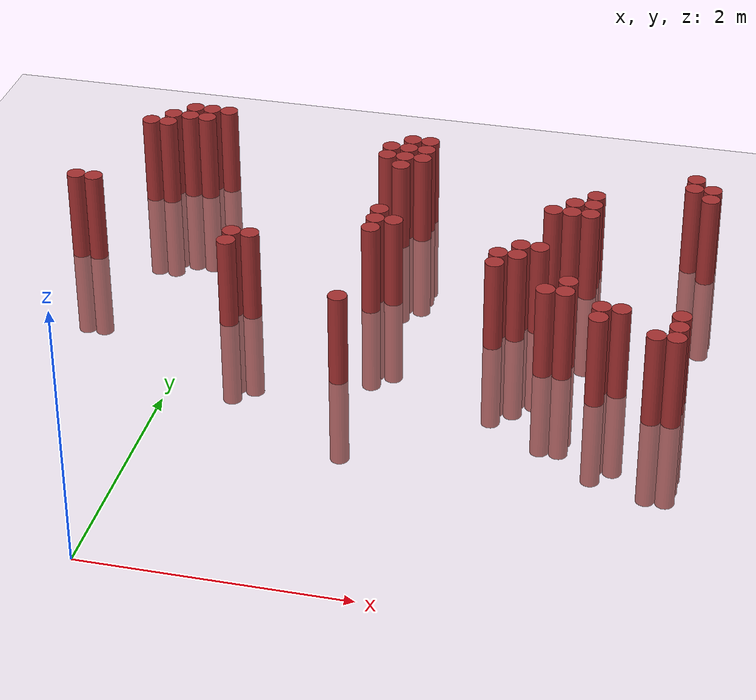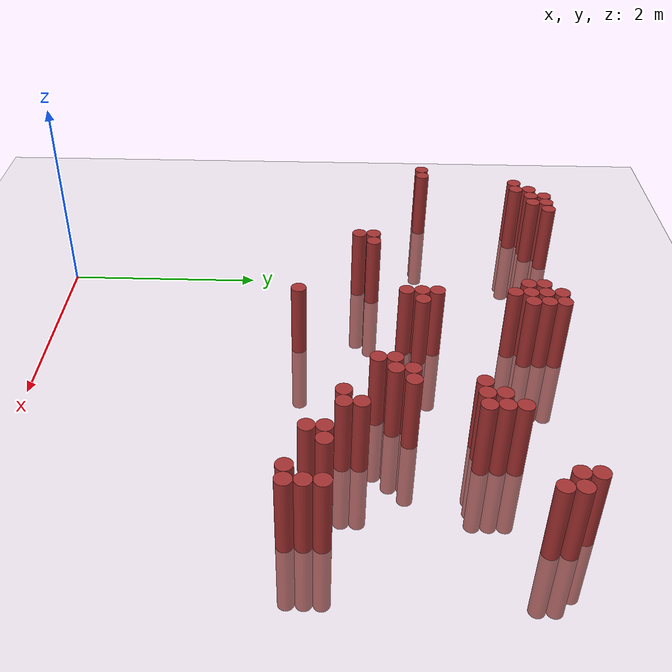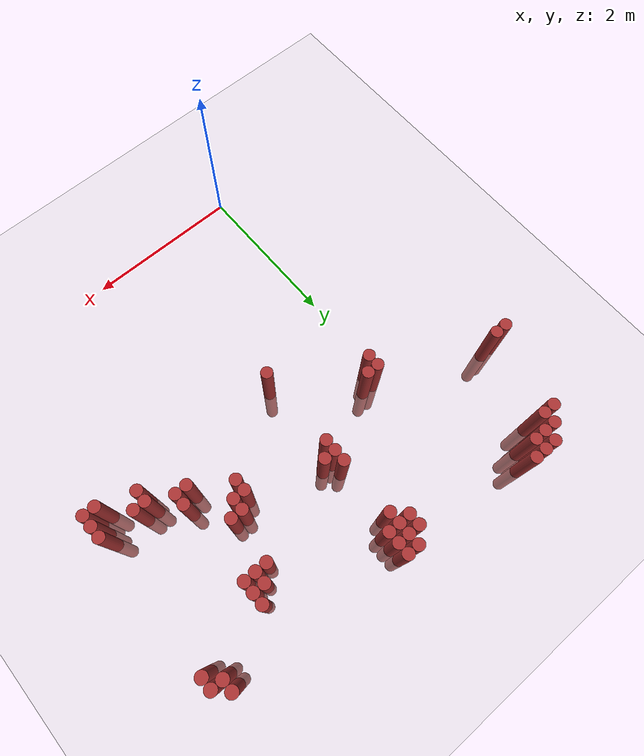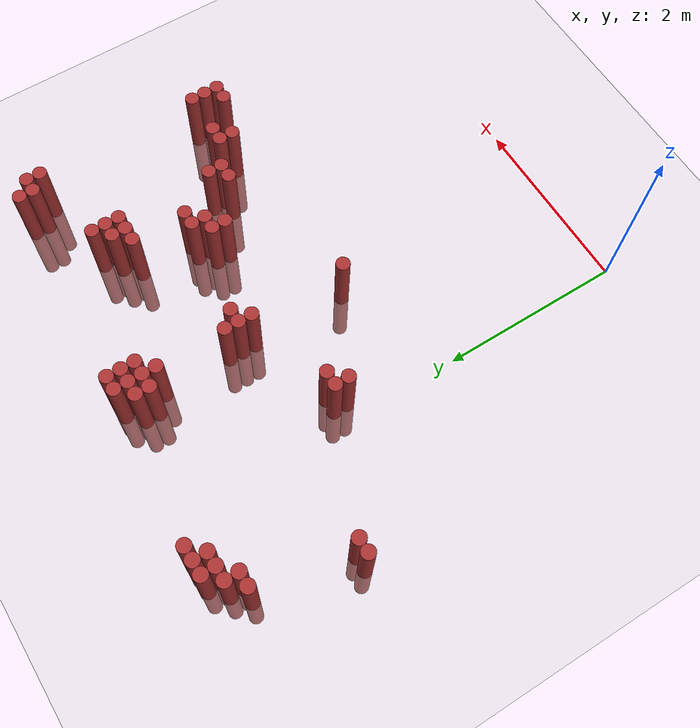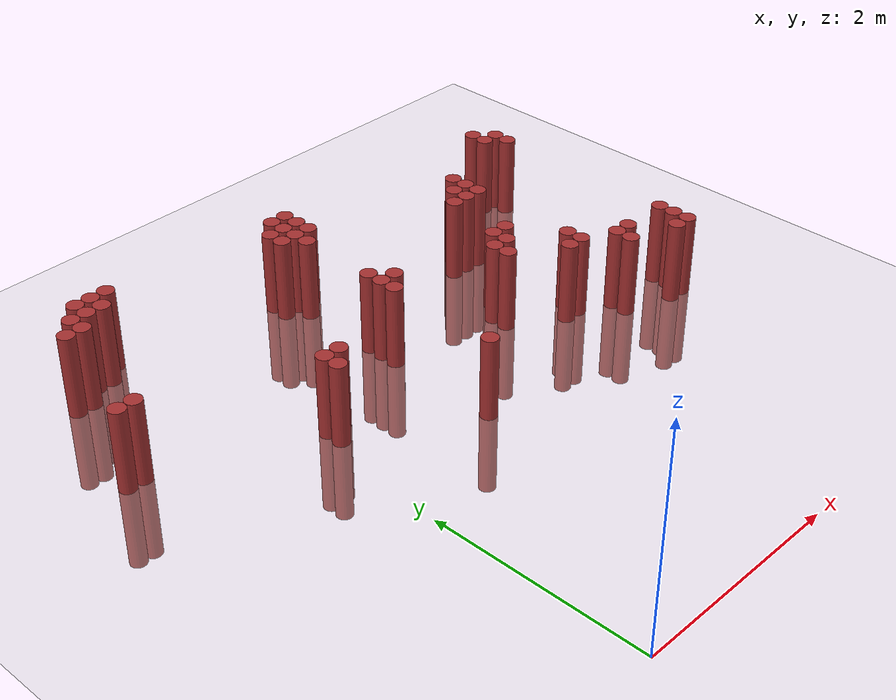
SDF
<sdf version="1.6">
 <world name="default">
  <model name="ground_plane">
   <static>1</static>
   <link name="link">
    <collision name="collision">
     <geometry><plane><normal>0 0 1</normal><size>100 100</size></plane></geometry>
     <surface><friction><ode><mu>100</mu><mu2>50</mu2></ode></friction></surface>
    </collision>
    <visual name="visual">
     <cast_shadows>0</cast_shadows>
     <geometry><plane><normal>0 0 1</normal><size>100 100</size></plane></geometry>
     <material>
      <script><uri>file://media/materials/scripts/gazebo.material</uri><name>Gazebo/Grey</name></script>
     </material>
    </visual>
   </link>
  </model>
  <model name="unit_cylinder_342">
   <static>1</static>
   <pose>-1.325000 3.925000 0.000000 0.000000 0.000000 0.000000</pose>
   <link name="link">
    <inertial>
     <mass>1</mass>
     <inertia><ixx>0.145833</ixx><ixy>0</ixy><ixz>0</ixz><iyy>0.145833</iyy><iyz>0</iyz><izz>0.125</izz></inertia>
    </inertial>
    <collision name="collision">
     <geometry><cylinder><radius>0.075000</radius><length>1.5</length></cylinder></geometry>
    </collision>
    <visual name="visual">
     <geometry><cylinder><radius>0.075000</radius><length>1.5</length></cylinder></geometry>
     <material>
      <ambient>0.648000 0.192000 0.192000 1</ambient>
      <diffuse>0.648000 0.192000 0.192000 1</diffuse>
     </material>
     <material>
      <script><name>Gazebo/Grey</name><uri>file://media/materials/scripts/gazebo.material</uri></script>
     </material>
    </visual>
   </link>
  </model>
  <model name="unit_cylinder_345">
   <static>1</static>
   <pose>-1.175000 3.925000 0.000000 0.000000 0.000000 0.000000</pose>
   <link name="link">
    <inertial>
     <mass>1</mass>
     <inertia><ixx>0.145833</ixx><ixy>0</ixy><ixz>0</ixz><iyy>0.145833</iyy><iyz>0</iyz><izz>0.125</izz></inertia>
    </inertial>
    <collision name="collision">
     <geometry><cylinder><radius>0.075000</radius><length>1.5</length></cylinder></geometry>
    </collision>
    <visual name="visual">
     <geometry><cylinder><radius>0.075000</radius><length>1.5</length></cylinder></geometry>
     <material>
      <ambient>0.648000 0.192000 0.192000 1</ambient>
      <diffuse>0.648000 0.192000 0.192000 1</diffuse>
     </material>
     <material>
      <script><name>Gazebo/Grey</name><uri>file://media/materials/scripts/gazebo.material</uri></script>
     </material>
    </visual>
   </link>
  </model>
  <model name="unit_cylinder_346">
   <static>1</static>
   <pose>-1.025000 4.975000 0.000000 0.000000 0.000000 0.000000</pose>
   <link name="link">
    <inertial>
     <mass>1</mass>
     <inertia><ixx>0.145833</ixx><ixy>0</ixy><ixz>0</ixz><iyy>0.145833</iyy><iyz>0</iyz><izz>0.125</izz></inertia>
    </inertial>
    <collision name="collision">
     <geometry><cylinder><radius>0.075000</radius><length>1.5</length></cylinder></geometry>
    </collision>
    <visual name="visual">
     <geometry><cylinder><radius>0.075000</radius><length>1.5</length></cylinder></geometry>
     <material>
      <ambient>0.648000 0.192000 0.192000 1</ambient>
      <diffuse>0.648000 0.192000 0.192000 1</diffuse>
     </material>
     <material>
      <script><name>Gazebo/Grey</name><uri>file://media/materials/scripts/gazebo.material</uri></script>
     </material>
    </visual>
   </link>
  </model>
  <model name="unit_cylinder_347">
   <static>1</static>
   <pose>-0.875000 4.975000 0.000000 0.000000 0.000000 0.000000</pose>
   <link name="link">
    <inertial>
     <mass>1</mass>
     <inertia><ixx>0.145833</ixx><ixy>0</ixy><ixz>0</ixz><iyy>0.145833</iyy><iyz>0</iyz><izz>0.125</izz></inertia>
    </inertial>
    <collision name="collision">
     <geometry><cylinder><radius>0.075000</radius><length>1.5</length></cylinder></geometry>
    </collision>
    <visual name="visual">
     <geometry><cylinder><radius>0.075000</radius><length>1.5</length></cylinder></geometry>
     <material>
      <ambient>0.648000 0.192000 0.192000 1</ambient>
      <diffuse>0.648000 0.192000 0.192000 1</diffuse>
     </material>
     <material>
      <script><name>Gazebo/Grey</name><uri>file://media/materials/scripts/gazebo.material</uri></script>
     </material>
    </visual>
   </link>
  </model>
  <model name="unit_cylinder_348">
   <static>1</static>
   <pose>-0.875000 5.125000 0.000000 0.000000 0.000000 0.000000</pose>
   <link name="link">
    <inertial>
     <mass>1</mass>
     <inertia><ixx>0.145833</ixx><ixy>0</ixy><ixz>0</ixz><iyy>0.145833</iyy><iyz>0</iyz><izz>0.125</izz></inertia>
    </inertial>
    <collision name="collision">
     <geometry><cylinder><radius>0.075000</radius><length>1.5</length></cylinder></geometry>
    </collision>
    <visual name="visual">
     <geometry><cylinder><radius>0.075000</radius><length>1.5</length></cylinder></geometry>
     <material>
      <ambient>0.648000 0.192000 0.192000 1</ambient>
      <diffuse>0.648000 0.192000 0.192000 1</diffuse>
     </material>
     <material>
      <script><name>Gazebo/Grey</name><uri>file://media/materials/scripts/gazebo.material</uri></script>
     </material>
    </visual>
   </link>
  </model>
  <model name="unit_cylinder_351">
   <static>1</static>
   <pose>-0.725000 5.125000 0.000000 0.000000 0.000000 0.000000</pose>
   <link name="link">
    <inertial>
     <mass>1</mass>
     <inertia><ixx>0.145833</ixx><ixy>0</ixy><ixz>0</ixz><iyy>0.145833</iyy><iyz>0</iyz><izz>0.125</izz></inertia>
    </inertial>
    <collision name="collision">
     <geometry><cylinder><radius>0.075000</radius><length>1.5</length></cylinder></geometry>
    </collision>
    <visual name="visual">
     <geometry><cylinder><radius>0.075000</radius><length>1.5</length></cylinder></geometry>
     <material>
      <ambient>0.648000 0.192000 0.192000 1</ambient>
      <diffuse>0.648000 0.192000 0.192000 1</diffuse>
     </material>
     <material>
      <script><name>Gazebo/Grey</name><uri>file://media/materials/scripts/gazebo.material</uri></script>
     </material>
    </visual>
   </link>
  </model>
  <model name="unit_cylinder_352">
   <static>1</static>
   <pose>-0.725000 5.275000 0.000000 0.000000 0.000000 0.000000</pose>
   <link name="link">
    <inertial>
     <mass>1</mass>
     <inertia><ixx>0.145833</ixx><ixy>0</ixy><ixz>0</ixz><iyy>0.145833</iyy><iyz>0</iyz><izz>0.125</izz></inertia>
    </inertial>
    <collision name="collision">
     <geometry><cylinder><radius>0.075000</radius><length>1.5</length></cylinder></geometry>
    </collision>
    <visual name="visual">
     <geometry><cylinder><radius>0.075000</radius><length>1.5</length></cylinder></geometry>
     <material>
      <ambient>0.648000 0.192000 0.192000 1</ambient>
      <diffuse>0.648000 0.192000 0.192000 1</diffuse>
     </material>
     <material>
      <script><name>Gazebo/Grey</name><uri>file://media/materials/scripts/gazebo.material</uri></script>
     </material>
    </visual>
   </link>
  </model>
  <model name="unit_cylinder_357">
   <static>1</static>
   <pose>-0.575000 5.125000 0.000000 0.000000 0.000000 0.000000</pose>
   <link name="link">
    <inertial>
     <mass>1</mass>
     <inertia><ixx>0.145833</ixx><ixy>0</ixy><ixz>0</ixz><iyy>0.145833</iyy><iyz>0</iyz><izz>0.125</izz></inertia>
    </inertial>
    <collision name="collision">
     <geometry><cylinder><radius>0.075000</radius><length>1.5</length></cylinder></geometry>
    </collision>
    <visual name="visual">
     <geometry><cylinder><radius>0.075000</radius><length>1.5</length></cylinder></geometry>
     <material>
      <ambient>0.648000 0.192000 0.192000 1</ambient>
      <diffuse>0.648000 0.192000 0.192000 1</diffuse>
     </material>
     <material>
      <script><name>Gazebo/Grey</name><uri>file://media/materials/scripts/gazebo.material</uri></script>
     </material>
    </visual>
   </link>
  </model>
  <model name="unit_cylinder_358">
   <static>1</static>
   <pose>-0.575000 5.275000 0.000000 0.000000 0.000000 0.000000</pose>
   <link name="link">
    <inertial>
     <mass>1</mass>
     <inertia><ixx>0.145833</ixx><ixy>0</ixy><ixz>0</ixz><iyy>0.145833</iyy><iyz>0</iyz><izz>0.125</izz></inertia>
    </inertial>
    <collision name="collision">
     <geometry><cylinder><radius>0.075000</radius><length>1.5</length></cylinder></geometry>
    </collision>
    <visual name="visual">
     <geometry><cylinder><radius>0.075000</radius><length>1.5</length></cylinder></geometry>
     <material>
      <ambient>0.648000 0.192000 0.192000 1</ambient>
      <diffuse>0.648000 0.192000 0.192000 1</diffuse>
     </material>
     <material>
      <script><name>Gazebo/Grey</name><uri>file://media/materials/scripts/gazebo.material</uri></script>
     </material>
    </visual>
   </link>
  </model>
  <model name="unit_cylinder_359">
   <static>1</static>
   <pose>-0.425000 5.275000 0.000000 0.000000 0.000000 0.000000</pose>
   <link name="link">
    <inertial>
     <mass>1</mass>
     <inertia><ixx>0.145833</ixx><ixy>0</ixy><ixz>0</ixz><iyy>0.145833</iyy><iyz>0</iyz><izz>0.125</izz></inertia>
    </inertial>
    <collision name="collision">
     <geometry><cylinder><radius>0.075000</radius><length>1.5</length></cylinder></geometry>
    </collision>
    <visual name="visual">
     <geometry><cylinder><radius>0.075000</radius><length>1.5</length></cylinder></geometry>
     <material>
      <ambient>0.648000 0.192000 0.192000 1</ambient>
      <diffuse>0.648000 0.192000 0.192000 1</diffuse>
     </material>
     <material>
      <script><name>Gazebo/Grey</name><uri>file://media/materials/scripts/gazebo.material</uri></script>
     </material>
    </visual>
   </link>
  </model>
  <model name="unit_cylinder_367">
   <static>1</static>
   <pose>0.175000 3.175000 0.000000 0.000000 0.000000 0.000000</pose>
   <link name="link">
    <inertial>
     <mass>1</mass>
     <inertia><ixx>0.145833</ixx><ixy>0</ixy><ixz>0</ixz><iyy>0.145833</iyy><iyz>0</iyz><izz>0.125</izz></inertia>
    </inertial>
    <collision name="collision">
     <geometry><cylinder><radius>0.075000</radius><length>1.5</length></cylinder></geometry>
    </collision>
    <visual name="visual">
     <geometry><cylinder><radius>0.075000</radius><length>1.5</length></cylinder></geometry>
     <material>
      <ambient>0.648000 0.192000 0.192000 1</ambient>
      <diffuse>0.648000 0.192000 0.192000 1</diffuse>
     </material>
     <material>
      <script><name>Gazebo/Grey</name><uri>file://media/materials/scripts/gazebo.material</uri></script>
     </material>
    </visual>
   </link>
  </model>
  <model name="unit_cylinder_368">
   <static>1</static>
   <pose>0.175000 3.325000 0.000000 0.000000 0.000000 0.000000</pose>
   <link name="link">
    <inertial>
     <mass>1</mass>
     <inertia><ixx>0.145833</ixx><ixy>0</ixy><ixz>0</ixz><iyy>0.145833</iyy><iyz>0</iyz><izz>0.125</izz></inertia>
    </inertial>
    <collision name="collision">
     <geometry><cylinder><radius>0.075000</radius><length>1.5</length></cylinder></geometry>
    </collision>
    <visual name="visual">
     <geometry><cylinder><radius>0.075000</radius><length>1.5</length></cylinder></geometry>
     <material>
      <ambient>0.648000 0.192000 0.192000 1</ambient>
      <diffuse>0.648000 0.192000 0.192000 1</diffuse>
     </material>
     <material>
      <script><name>Gazebo/Grey</name><uri>file://media/materials/scripts/gazebo.material</uri></script>
     </material>
    </visual>
   </link>
  </model>
  <model name="unit_cylinder_369">
   <static>1</static>
   <pose>0.325000 3.325000 0.000000 0.000000 0.000000 0.000000</pose>
   <link name="link">
    <inertial>
     <mass>1</mass>
     <inertia><ixx>0.145833</ixx><ixy>0</ixy><ixz>0</ixz><iyy>0.145833</iyy><iyz>0</iyz><izz>0.125</izz></inertia>
    </inertial>
    <collision name="collision">
     <geometry><cylinder><radius>0.075000</radius><length>1.5</length></cylinder></geometry>
    </collision>
    <visual name="visual">
     <geometry><cylinder><radius>0.075000</radius><length>1.5</length></cylinder></geometry>
     <material>
      <ambient>0.648000 0.192000 0.192000 1</ambient>
      <diffuse>0.648000 0.192000 0.192000 1</diffuse>
     </material>
     <material>
      <script><name>Gazebo/Grey</name><uri>file://media/materials/scripts/gazebo.material</uri></script>
     </material>
    </visual>
   </link>
  </model>
  <model name="unit_cylinder_378">
   <static>1</static>
   <pose>1.075000 4.825000 0.000000 0.000000 0.000000 0.000000</pose>
   <link name="link">
    <inertial>
     <mass>1</mass>
     <inertia><ixx>0.145833</ixx><ixy>0</ixy><ixz>0</ixz><iyy>0.145833</iyy><iyz>0</iyz><izz>0.125</izz></inertia>
    </inertial>
    <collision name="collision">
     <geometry><cylinder><radius>0.075000</radius><length>1.5</length></cylinder></geometry>
    </collision>
    <visual name="visual">
     <geometry><cylinder><radius>0.075000</radius><length>1.5</length></cylinder></geometry>
     <material>
      <ambient>0.648000 0.192000 0.192000 1</ambient>
      <diffuse>0.648000 0.192000 0.192000 1</diffuse>
     </material>
     <material>
      <script><name>Gazebo/Grey</name><uri>file://media/materials/scripts/gazebo.material</uri></script>
     </material>
    </visual>
   </link>
  </model>
  <model name="unit_cylinder_379">
   <static>1</static>
   <pose>1.075000 4.975000 0.000000 0.000000 0.000000 0.000000</pose>
   <link name="link">
    <inertial>
     <mass>1</mass>
     <inertia><ixx>0.145833</ixx><ixy>0</ixy><ixz>0</ixz><iyy>0.145833</iyy><iyz>0</iyz><izz>0.125</izz></inertia>
    </inertial>
    <collision name="collision">
     <geometry><cylinder><radius>0.075000</radius><length>1.5</length></cylinder></geometry>
    </collision>
    <visual name="visual">
     <geometry><cylinder><radius>0.075000</radius><length>1.5</length></cylinder></geometry>
     <material>
      <ambient>0.648000 0.192000 0.192000 1</ambient>
      <diffuse>0.648000 0.192000 0.192000 1</diffuse>
     </material>
     <material>
      <script><name>Gazebo/Grey</name><uri>file://media/materials/scripts/gazebo.material</uri></script>
     </material>
    </visual>
   </link>
  </model>
  <model name="unit_cylinder_381">
   <static>1</static>
   <pose>1.225000 2.575000 0.000000 0.000000 0.000000 0.000000</pose>
   <link name="link">
    <inertial>
     <mass>1</mass>
     <inertia><ixx>0.145833</ixx><ixy>0</ixy><ixz>0</ixz><iyy>0.145833</iyy><iyz>0</iyz><izz>0.125</izz></inertia>
    </inertial>
    <collision name="collision">
     <geometry><cylinder><radius>0.075000</radius><length>1.5</length></cylinder></geometry>
    </collision>
    <visual name="visual">
     <geometry><cylinder><radius>0.075000</radius><length>1.5</length></cylinder></geometry>
     <material>
      <ambient>0.648000 0.192000 0.192000 1</ambient>
      <diffuse>0.648000 0.192000 0.192000 1</diffuse>
     </material>
     <material>
      <script><name>Gazebo/Grey</name><uri>file://media/materials/scripts/gazebo.material</uri></script>
     </material>
    </visual>
   </link>
  </model>
  <model name="unit_cylinder_382">
   <static>1</static>
   <pose>1.225000 3.625000 0.000000 0.000000 0.000000 0.000000</pose>
   <link name="link">
    <inertial>
     <mass>1</mass>
     <inertia><ixx>0.145833</ixx><ixy>0</ixy><ixz>0</ixz><iyy>0.145833</iyy><iyz>0</iyz><izz>0.125</izz></inertia>
    </inertial>
    <collision name="collision">
     <geometry><cylinder><radius>0.075000</radius><length>1.5</length></cylinder></geometry>
    </collision>
    <visual name="visual">
     <geometry><cylinder><radius>0.075000</radius><length>1.5</length></cylinder></geometry>
     <material>
      <ambient>0.648000 0.192000 0.192000 1</ambient>
      <diffuse>0.648000 0.192000 0.192000 1</diffuse>
     </material>
     <material>
      <script><name>Gazebo/Grey</name><uri>file://media/materials/scripts/gazebo.material</uri></script>
     </material>
    </visual>
   </link>
  </model>
  <model name="unit_cylinder_383">
   <static>1</static>
   <pose>1.225000 3.775000 0.000000 0.000000 0.000000 0.000000</pose>
   <link name="link">
    <inertial>
     <mass>1</mass>
     <inertia><ixx>0.145833</ixx><ixy>0</ixy><ixz>0</ixz><iyy>0.145833</iyy><iyz>0</iyz><izz>0.125</izz></inertia>
    </inertial>
    <collision name="collision">
     <geometry><cylinder><radius>0.075000</radius><length>1.5</length></cylinder></geometry>
    </collision>
    <visual name="visual">
     <geometry><cylinder><radius>0.075000</radius><length>1.5</length></cylinder></geometry>
     <material>
      <ambient>0.648000 0.192000 0.192000 1</ambient>
      <diffuse>0.648000 0.192000 0.192000 1</diffuse>
     </material>
     <material>
      <script><name>Gazebo/Grey</name><uri>file://media/materials/scripts/gazebo.material</uri></script>
     </material>
    </visual>
   </link>
  </model>
  <model name="unit_cylinder_384">
   <static>1</static>
   <pose>1.225000 3.925000 0.000000 0.000000 0.000000 0.000000</pose>
   <link name="link">
    <inertial>
     <mass>1</mass>
     <inertia><ixx>0.145833</ixx><ixy>0</ixy><ixz>0</ixz><iyy>0.145833</iyy><iyz>0</iyz><izz>0.125</izz></inertia>
    </inertial>
    <collision name="collision">
     <geometry><cylinder><radius>0.075000</radius><length>1.5</length></cylinder></geometry>
    </collision>
    <visual name="visual">
     <geometry><cylinder><radius>0.075000</radius><length>1.5</length></cylinder></geometry>
     <material>
      <ambient>0.648000 0.192000 0.192000 1</ambient>
      <diffuse>0.648000 0.192000 0.192000 1</diffuse>
     </material>
     <material>
      <script><name>Gazebo/Grey</name><uri>file://media/materials/scripts/gazebo.material</uri></script>
     </material>
    </visual>
   </link>
  </model>
  <model name="unit_cylinder_385">
   <static>1</static>
   <pose>1.225000 4.675000 0.000000 0.000000 0.000000 0.000000</pose>
   <link name="link">
    <inertial>
     <mass>1</mass>
     <inertia><ixx>0.145833</ixx><ixy>0</ixy><ixz>0</ixz><iyy>0.145833</iyy><iyz>0</iyz><izz>0.125</izz></inertia>
    </inertial>
    <collision name="collision">
     <geometry><cylinder><radius>0.075000</radius><length>1.5</length></cylinder></geometry>
    </collision>
    <visual name="visual">
     <geometry><cylinder><radius>0.075000</radius><length>1.5</length></cylinder></geometry>
     <material>
      <ambient>0.648000 0.192000 0.192000 1</ambient>
      <diffuse>0.648000 0.192000 0.192000 1</diffuse>
     </material>
     <material>
      <script><name>Gazebo/Grey</name><uri>file://media/materials/scripts/gazebo.material</uri></script>
     </material>
    </visual>
   </link>
  </model>
  <model name="unit_cylinder_386">
   <static>1</static>
   <pose>1.225000 4.825000 0.000000 0.000000 0.000000 0.000000</pose>
   <link name="link">
    <inertial>
     <mass>1</mass>
     <inertia><ixx>0.145833</ixx><ixy>0</ixy><ixz>0</ixz><iyy>0.145833</iyy><iyz>0</iyz><izz>0.125</izz></inertia>
    </inertial>
    <collision name="collision">
     <geometry><cylinder><radius>0.075000</radius><length>1.5</length></cylinder></geometry>
    </collision>
    <visual name="visual">
     <geometry><cylinder><radius>0.075000</radius><length>1.5</length></cylinder></geometry>
     <material>
      <ambient>0.648000 0.192000 0.192000 1</ambient>
      <diffuse>0.648000 0.192000 0.192000 1</diffuse>
     </material>
     <material>
      <script><name>Gazebo/Grey</name><uri>file://media/materials/scripts/gazebo.material</uri></script>
     </material>
    </visual>
   </link>
  </model>
  <model name="unit_cylinder_387">
   <static>1</static>
   <pose>1.225000 4.975000 0.000000 0.000000 0.000000 0.000000</pose>
   <link name="link">
    <inertial>
     <mass>1</mass>
     <inertia><ixx>0.145833</ixx><ixy>0</ixy><ixz>0</ixz><iyy>0.145833</iyy><iyz>0</iyz><izz>0.125</izz></inertia>
    </inertial>
    <collision name="collision">
     <geometry><cylinder><radius>0.075000</radius><length>1.5</length></cylinder></geometry>
    </collision>
    <visual name="visual">
     <geometry><cylinder><radius>0.075000</radius><length>1.5</length></cylinder></geometry>
     <material>
      <ambient>0.648000 0.192000 0.192000 1</ambient>
      <diffuse>0.648000 0.192000 0.192000 1</diffuse>
     </material>
     <material>
      <script><name>Gazebo/Grey</name><uri>file://media/materials/scripts/gazebo.material</uri></script>
     </material>
    </visual>
   </link>
  </model>
  <model name="unit_cylinder_388">
   <static>1</static>
   <pose>1.225000 5.125000 0.000000 0.000000 0.000000 0.000000</pose>
   <link name="link">
    <inertial>
     <mass>1</mass>
     <inertia><ixx>0.145833</ixx><ixy>0</ixy><ixz>0</ixz><iyy>0.145833</iyy><iyz>0</iyz><izz>0.125</izz></inertia>
    </inertial>
    <collision name="collision">
     <geometry><cylinder><radius>0.075000</radius><length>1.5</length></cylinder></geometry>
    </collision>
    <visual name="visual">
     <geometry><cylinder><radius>0.075000</radius><length>1.5</length></cylinder></geometry>
     <material>
      <ambient>0.648000 0.192000 0.192000 1</ambient>
      <diffuse>0.648000 0.192000 0.192000 1</diffuse>
     </material>
     <material>
      <script><name>Gazebo/Grey</name><uri>file://media/materials/scripts/gazebo.material</uri></script>
     </material>
    </visual>
   </link>
  </model>
  <model name="unit_cylinder_389">
   <static>1</static>
   <pose>1.375000 3.775000 0.000000 0.000000 0.000000 0.000000</pose>
   <link name="link">
    <inertial>
     <mass>1</mass>
     <inertia><ixx>0.145833</ixx><ixy>0</ixy><ixz>0</ixz><iyy>0.145833</iyy><iyz>0</iyz><izz>0.125</izz></inertia>
    </inertial>
    <collision name="collision">
     <geometry><cylinder><radius>0.075000</radius><length>1.5</length></cylinder></geometry>
    </collision>
    <visual name="visual">
     <geometry><cylinder><radius>0.075000</radius><length>1.5</length></cylinder></geometry>
     <material>
      <ambient>0.648000 0.192000 0.192000 1</ambient>
      <diffuse>0.648000 0.192000 0.192000 1</diffuse>
     </material>
     <material>
      <script><name>Gazebo/Grey</name><uri>file://media/materials/scripts/gazebo.material</uri></script>
     </material>
    </visual>
   </link>
  </model>
  <model name="unit_cylinder_390">
   <static>1</static>
   <pose>1.375000 4.825000 0.000000 0.000000 0.000000 0.000000</pose>
   <link name="link">
    <inertial>
     <mass>1</mass>
     <inertia><ixx>0.145833</ixx><ixy>0</ixy><ixz>0</ixz><iyy>0.145833</iyy><iyz>0</iyz><izz>0.125</izz></inertia>
    </inertial>
    <collision name="collision">
     <geometry><cylinder><radius>0.075000</radius><length>1.5</length></cylinder></geometry>
    </collision>
    <visual name="visual">
     <geometry><cylinder><radius>0.075000</radius><length>1.5</length></cylinder></geometry>
     <material>
      <ambient>0.648000 0.192000 0.192000 1</ambient>
      <diffuse>0.648000 0.192000 0.192000 1</diffuse>
     </material>
     <material>
      <script><name>Gazebo/Grey</name><uri>file://media/materials/scripts/gazebo.material</uri></script>
     </material>
    </visual>
   </link>
  </model>
  <model name="unit_cylinder_391">
   <static>1</static>
   <pose>1.375000 4.975000 0.000000 0.000000 0.000000 0.000000</pose>
   <link name="link">
    <inertial>
     <mass>1</mass>
     <inertia><ixx>0.145833</ixx><ixy>0</ixy><ixz>0</ixz><iyy>0.145833</iyy><iyz>0</iyz><izz>0.125</izz></inertia>
    </inertial>
    <collision name="collision">
     <geometry><cylinder><radius>0.075000</radius><length>1.5</length></cylinder></geometry>
    </collision>
    <visual name="visual">
     <geometry><cylinder><radius>0.075000</radius><length>1.5</length></cylinder></geometry>
     <material>
      <ambient>0.648000 0.192000 0.192000 1</ambient>
      <diffuse>0.648000 0.192000 0.192000 1</diffuse>
     </material>
     <material>
      <script><name>Gazebo/Grey</name><uri>file://media/materials/scripts/gazebo.material</uri></script>
     </material>
    </visual>
   </link>
  </model>
  <model name="unit_cylinder_392">
   <static>1</static>
   <pose>1.375000 5.125000 0.000000 0.000000 0.000000 0.000000</pose>
   <link name="link">
    <inertial>
     <mass>1</mass>
     <inertia><ixx>0.145833</ixx><ixy>0</ixy><ixz>0</ixz><iyy>0.145833</iyy><iyz>0</iyz><izz>0.125</izz></inertia>
    </inertial>
    <collision name="collision">
     <geometry><cylinder><radius>0.075000</radius><length>1.5</length></cylinder></geometry>
    </collision>
    <visual name="visual">
     <geometry><cylinder><radius>0.075000</radius><length>1.5</length></cylinder></geometry>
     <material>
      <ambient>0.648000 0.192000 0.192000 1</ambient>
      <diffuse>0.648000 0.192000 0.192000 1</diffuse>
     </material>
     <material>
      <script><name>Gazebo/Grey</name><uri>file://media/materials/scripts/gazebo.material</uri></script>
     </material>
    </visual>
   </link>
  </model>
  <model name="unit_cylinder_413">
   <static>1</static>
   <pose>2.275000 3.325000 0.000000 0.000000 0.000000 0.000000</pose>
   <link name="link">
    <inertial>
     <mass>1</mass>
     <inertia><ixx>0.145833</ixx><ixy>0</ixy><ixz>0</ixz><iyy>0.145833</iyy><iyz>0</iyz><izz>0.125</izz></inertia>
    </inertial>
    <collision name="collision">
     <geometry><cylinder><radius>0.075000</radius><length>1.5</length></cylinder></geometry>
    </collision>
    <visual name="visual">
     <geometry><cylinder><radius>0.075000</radius><length>1.5</length></cylinder></geometry>
     <material>
      <ambient>0.648000 0.192000 0.192000 1</ambient>
      <diffuse>0.648000 0.192000 0.192000 1</diffuse>
     </material>
     <material>
      <script><name>Gazebo/Grey</name><uri>file://media/materials/scripts/gazebo.material</uri></script>
     </material>
    </visual>
   </link>
  </model>
  <model name="unit_cylinder_414">
   <static>1</static>
   <pose>2.275000 3.475000 0.000000 0.000000 0.000000 0.000000</pose>
   <link name="link">
    <inertial>
     <mass>1</mass>
     <inertia><ixx>0.145833</ixx><ixy>0</ixy><ixz>0</ixz><iyy>0.145833</iyy><iyz>0</iyz><izz>0.125</izz></inertia>
    </inertial>
    <collision name="collision">
     <geometry><cylinder><radius>0.075000</radius><length>1.5</length></cylinder></geometry>
    </collision>
    <visual name="visual">
     <geometry><cylinder><radius>0.075000</radius><length>1.5</length></cylinder></geometry>
     <material>
      <ambient>0.648000 0.192000 0.192000 1</ambient>
      <diffuse>0.648000 0.192000 0.192000 1</diffuse>
     </material>
     <material>
      <script><name>Gazebo/Grey</name><uri>file://media/materials/scripts/gazebo.material</uri></script>
     </material>
    </visual>
   </link>
  </model>
  <model name="unit_cylinder_415">
   <static>1</static>
   <pose>2.425000 3.475000 0.000000 0.000000 0.000000 0.000000</pose>
   <link name="link">
    <inertial>
     <mass>1</mass>
     <inertia><ixx>0.145833</ixx><ixy>0</ixy><ixz>0</ixz><iyy>0.145833</iyy><iyz>0</iyz><izz>0.125</izz></inertia>
    </inertial>
    <collision name="collision">
     <geometry><cylinder><radius>0.075000</radius><length>1.5</length></cylinder></geometry>
    </collision>
    <visual name="visual">
     <geometry><cylinder><radius>0.075000</radius><length>1.5</length></cylinder></geometry>
     <material>
      <ambient>0.648000 0.192000 0.192000 1</ambient>
      <diffuse>0.648000 0.192000 0.192000 1</diffuse>
     </material>
     <material>
      <script><name>Gazebo/Grey</name><uri>file://media/materials/scripts/gazebo.material</uri></script>
     </material>
    </visual>
   </link>
  </model>
  <model name="unit_cylinder_416">
   <static>1</static>
   <pose>2.425000 3.625000 0.000000 0.000000 0.000000 0.000000</pose>
   <link name="link">
    <inertial>
     <mass>1</mass>
     <inertia><ixx>0.145833</ixx><ixy>0</ixy><ixz>0</ixz><iyy>0.145833</iyy><iyz>0</iyz><izz>0.125</izz></inertia>
    </inertial>
    <collision name="collision">
     <geometry><cylinder><radius>0.075000</radius><length>1.5</length></cylinder></geometry>
    </collision>
    <visual name="visual">
     <geometry><cylinder><radius>0.075000</radius><length>1.5</length></cylinder></geometry>
     <material>
      <ambient>0.648000 0.192000 0.192000 1</ambient>
      <diffuse>0.648000 0.192000 0.192000 1</diffuse>
     </material>
     <material>
      <script><name>Gazebo/Grey</name><uri>file://media/materials/scripts/gazebo.material</uri></script>
     </material>
    </visual>
   </link>
  </model>
  <model name="unit_cylinder_417">
   <static>1</static>
   <pose>2.575000 3.625000 0.000000 0.000000 0.000000 0.000000</pose>
   <link name="link">
    <inertial>
     <mass>1</mass>
     <inertia><ixx>0.145833</ixx><ixy>0</ixy><ixz>0</ixz><iyy>0.145833</iyy><iyz>0</iyz><izz>0.125</izz></inertia>
    </inertial>
    <collision name="collision">
     <geometry><cylinder><radius>0.075000</radius><length>1.5</length></cylinder></geometry>
    </collision>
    <visual name="visual">
     <geometry><cylinder><radius>0.075000</radius><length>1.5</length></cylinder></geometry>
     <material>
      <ambient>0.648000 0.192000 0.192000 1</ambient>
      <diffuse>0.648000 0.192000 0.192000 1</diffuse>
     </material>
     <material>
      <script><name>Gazebo/Grey</name><uri>file://media/materials/scripts/gazebo.material</uri></script>
     </material>
    </visual>
   </link>
  </model>
  <model name="unit_cylinder_418">
   <static>1</static>
   <pose>2.575000 4.225000 0.000000 0.000000 0.000000 0.000000</pose>
   <link name="link">
    <inertial>
     <mass>1</mass>
     <inertia><ixx>0.145833</ixx><ixy>0</ixy><ixz>0</ixz><iyy>0.145833</iyy><iyz>0</iyz><izz>0.125</izz></inertia>
    </inertial>
    <collision name="collision">
     <geometry><cylinder><radius>0.075000</radius><length>1.5</length></cylinder></geometry>
    </collision>
    <visual name="visual">
     <geometry><cylinder><radius>0.075000</radius><length>1.5</length></cylinder></geometry>
     <material>
      <ambient>0.648000 0.192000 0.192000 1</ambient>
      <diffuse>0.648000 0.192000 0.192000 1</diffuse>
     </material>
     <material>
      <script><name>Gazebo/Grey</name><uri>file://media/materials/scripts/gazebo.material</uri></script>
     </material>
    </visual>
   </link>
  </model>
  <model name="unit_cylinder_421">
   <static>1</static>
   <pose>2.725000 3.025000 0.000000 0.000000 0.000000 0.000000</pose>
   <link name="link">
    <inertial>
     <mass>1</mass>
     <inertia><ixx>0.145833</ixx><ixy>0</ixy><ixz>0</ixz><iyy>0.145833</iyy><iyz>0</iyz><izz>0.125</izz></inertia>
    </inertial>
    <collision name="collision">
     <geometry><cylinder><radius>0.075000</radius><length>1.5</length></cylinder></geometry>
    </collision>
    <visual name="visual">
     <geometry><cylinder><radius>0.075000</radius><length>1.5</length></cylinder></geometry>
     <material>
      <ambient>0.648000 0.192000 0.192000 1</ambient>
      <diffuse>0.648000 0.192000 0.192000 1</diffuse>
     </material>
     <material>
      <script><name>Gazebo/Grey</name><uri>file://media/materials/scripts/gazebo.material</uri></script>
     </material>
    </visual>
   </link>
  </model>
  <model name="unit_cylinder_422">
   <static>1</static>
   <pose>2.725000 4.225000 0.000000 0.000000 0.000000 0.000000</pose>
   <link name="link">
    <inertial>
     <mass>1</mass>
     <inertia><ixx>0.145833</ixx><ixy>0</ixy><ixz>0</ixz><iyy>0.145833</iyy><iyz>0</iyz><izz>0.125</izz></inertia>
    </inertial>
    <collision name="collision">
     <geometry><cylinder><radius>0.075000</radius><length>1.5</length></cylinder></geometry>
    </collision>
    <visual name="visual">
     <geometry><cylinder><radius>0.075000</radius><length>1.5</length></cylinder></geometry>
     <material>
      <ambient>0.648000 0.192000 0.192000 1</ambient>
      <diffuse>0.648000 0.192000 0.192000 1</diffuse>
     </material>
     <material>
      <script><name>Gazebo/Grey</name><uri>file://media/materials/scripts/gazebo.material</uri></script>
     </material>
    </visual>
   </link>
  </model>
  <model name="unit_cylinder_423">
   <static>1</static>
   <pose>2.725000 4.375000 0.000000 0.000000 0.000000 0.000000</pose>
   <link name="link">
    <inertial>
     <mass>1</mass>
     <inertia><ixx>0.145833</ixx><ixy>0</ixy><ixz>0</ixz><iyy>0.145833</iyy><iyz>0</iyz><izz>0.125</izz></inertia>
    </inertial>
    <collision name="collision">
     <geometry><cylinder><radius>0.075000</radius><length>1.5</length></cylinder></geometry>
    </collision>
    <visual name="visual">
     <geometry><cylinder><radius>0.075000</radius><length>1.5</length></cylinder></geometry>
     <material>
      <ambient>0.648000 0.192000 0.192000 1</ambient>
      <diffuse>0.648000 0.192000 0.192000 1</diffuse>
     </material>
     <material>
      <script><name>Gazebo/Grey</name><uri>file://media/materials/scripts/gazebo.material</uri></script>
     </material>
    </visual>
   </link>
  </model>
  <model name="unit_cylinder_428">
   <static>1</static>
   <pose>2.875000 3.025000 0.000000 0.000000 0.000000 0.000000</pose>
   <link name="link">
    <inertial>
     <mass>1</mass>
     <inertia><ixx>0.145833</ixx><ixy>0</ixy><ixz>0</ixz><iyy>0.145833</iyy><iyz>0</iyz><izz>0.125</izz></inertia>
    </inertial>
    <collision name="collision">
     <geometry><cylinder><radius>0.075000</radius><length>1.5</length></cylinder></geometry>
    </collision>
    <visual name="visual">
     <geometry><cylinder><radius>0.075000</radius><length>1.5</length></cylinder></geometry>
     <material>
      <ambient>0.648000 0.192000 0.192000 1</ambient>
      <diffuse>0.648000 0.192000 0.192000 1</diffuse>
     </material>
     <material>
      <script><name>Gazebo/Grey</name><uri>file://media/materials/scripts/gazebo.material</uri></script>
     </material>
    </visual>
   </link>
  </model>
  <model name="unit_cylinder_429">
   <static>1</static>
   <pose>2.875000 3.175000 0.000000 0.000000 0.000000 0.000000</pose>
   <link name="link">
    <inertial>
     <mass>1</mass>
     <inertia><ixx>0.145833</ixx><ixy>0</ixy><ixz>0</ixz><iyy>0.145833</iyy><iyz>0</iyz><izz>0.125</izz></inertia>
    </inertial>
    <collision name="collision">
     <geometry><cylinder><radius>0.075000</radius><length>1.5</length></cylinder></geometry>
    </collision>
    <visual name="visual">
     <geometry><cylinder><radius>0.075000</radius><length>1.5</length></cylinder></geometry>
     <material>
      <ambient>0.648000 0.192000 0.192000 1</ambient>
      <diffuse>0.648000 0.192000 0.192000 1</diffuse>
     </material>
     <material>
      <script><name>Gazebo/Grey</name><uri>file://media/materials/scripts/gazebo.material</uri></script>
     </material>
    </visual>
   </link>
  </model>
  <model name="unit_cylinder_430">
   <static>1</static>
   <pose>2.875000 4.225000 0.000000 0.000000 0.000000 0.000000</pose>
   <link name="link">
    <inertial>
     <mass>1</mass>
     <inertia><ixx>0.145833</ixx><ixy>0</ixy><ixz>0</ixz><iyy>0.145833</iyy><iyz>0</iyz><izz>0.125</izz></inertia>
    </inertial>
    <collision name="collision">
     <geometry><cylinder><radius>0.075000</radius><length>1.5</length></cylinder></geometry>
    </collision>
    <visual name="visual">
     <geometry><cylinder><radius>0.075000</radius><length>1.5</length></cylinder></geometry>
     <material>
      <ambient>0.648000 0.192000 0.192000 1</ambient>
      <diffuse>0.648000 0.192000 0.192000 1</diffuse>
     </material>
     <material>
      <script><name>Gazebo/Grey</name><uri>file://media/materials/scripts/gazebo.material</uri></script>
     </material>
    </visual>
   </link>
  </model>
  <model name="unit_cylinder_431">
   <static>1</static>
   <pose>2.875000 4.375000 0.000000 0.000000 0.000000 0.000000</pose>
   <link name="link">
    <inertial>
     <mass>1</mass>
     <inertia><ixx>0.145833</ixx><ixy>0</ixy><ixz>0</ixz><iyy>0.145833</iyy><iyz>0</iyz><izz>0.125</izz></inertia>
    </inertial>
    <collision name="collision">
     <geometry><cylinder><radius>0.075000</radius><length>1.5</length></cylinder></geometry>
    </collision>
    <visual name="visual">
     <geometry><cylinder><radius>0.075000</radius><length>1.5</length></cylinder></geometry>
     <material>
      <ambient>0.648000 0.192000 0.192000 1</ambient>
      <diffuse>0.648000 0.192000 0.192000 1</diffuse>
     </material>
     <material>
      <script><name>Gazebo/Grey</name><uri>file://media/materials/scripts/gazebo.material</uri></script>
     </material>
    </visual>
   </link>
  </model>
  <model name="unit_cylinder_432">
   <static>1</static>
   <pose>2.875000 4.525000 0.000000 0.000000 0.000000 0.000000</pose>
   <link name="link">
    <inertial>
     <mass>1</mass>
     <inertia><ixx>0.145833</ixx><ixy>0</ixy><ixz>0</ixz><iyy>0.145833</iyy><iyz>0</iyz><izz>0.125</izz></inertia>
    </inertial>
    <collision name="collision">
     <geometry><cylinder><radius>0.075000</radius><length>1.5</length></cylinder></geometry>
    </collision>
    <visual name="visual">
     <geometry><cylinder><radius>0.075000</radius><length>1.5</length></cylinder></geometry>
     <material>
      <ambient>0.648000 0.192000 0.192000 1</ambient>
      <diffuse>0.648000 0.192000 0.192000 1</diffuse>
     </material>
     <material>
      <script><name>Gazebo/Grey</name><uri>file://media/materials/scripts/gazebo.material</uri></script>
     </material>
    </visual>
   </link>
  </model>
  <model name="unit_cylinder_441">
   <static>1</static>
   <pose>3.175000 2.725000 0.000000 0.000000 0.000000 0.000000</pose>
   <link name="link">
    <inertial>
     <mass>1</mass>
     <inertia><ixx>0.145833</ixx><ixy>0</ixy><ixz>0</ixz><iyy>0.145833</iyy><iyz>0</iyz><izz>0.125</izz></inertia>
    </inertial>
    <collision name="collision">
     <geometry><cylinder><radius>0.075000</radius><length>1.5</length></cylinder></geometry>
    </collision>
    <visual name="visual">
     <geometry><cylinder><radius>0.075000</radius><length>1.5</length></cylinder></geometry>
     <material>
      <ambient>0.648000 0.192000 0.192000 1</ambient>
      <diffuse>0.648000 0.192000 0.192000 1</diffuse>
     </material>
     <material>
      <script><name>Gazebo/Grey</name><uri>file://media/materials/scripts/gazebo.material</uri></script>
     </material>
    </visual>
   </link>
  </model>
  <model name="unit_cylinder_442">
   <static>1</static>
   <pose>3.175000 2.875000 0.000000 0.000000 0.000000 0.000000</pose>
   <link name="link">
    <inertial>
     <mass>1</mass>
     <inertia><ixx>0.145833</ixx><ixy>0</ixy><ixz>0</ixz><iyy>0.145833</iyy><iyz>0</iyz><izz>0.125</izz></inertia>
    </inertial>
    <collision name="collision">
     <geometry><cylinder><radius>0.075000</radius><length>1.5</length></cylinder></geometry>
    </collision>
    <visual name="visual">
     <geometry><cylinder><radius>0.075000</radius><length>1.5</length></cylinder></geometry>
     <material>
      <ambient>0.648000 0.192000 0.192000 1</ambient>
      <diffuse>0.648000 0.192000 0.192000 1</diffuse>
     </material>
     <material>
      <script><name>Gazebo/Grey</name><uri>file://media/materials/scripts/gazebo.material</uri></script>
     </material>
    </visual>
   </link>
  </model>
  <model name="unit_cylinder_447">
   <static>1</static>
   <pose>3.325000 2.875000 0.000000 0.000000 0.000000 0.000000</pose>
   <link name="link">
    <inertial>
     <mass>1</mass>
     <inertia><ixx>0.145833</ixx><ixy>0</ixy><ixz>0</ixz><iyy>0.145833</iyy><iyz>0</iyz><izz>0.125</izz></inertia>
    </inertial>
    <collision name="collision">
     <geometry><cylinder><radius>0.075000</radius><length>1.5</length></cylinder></geometry>
    </collision>
    <visual name="visual">
     <geometry><cylinder><radius>0.075000</radius><length>1.5</length></cylinder></geometry>
     <material>
      <ambient>0.648000 0.192000 0.192000 1</ambient>
      <diffuse>0.648000 0.192000 0.192000 1</diffuse>
     </material>
     <material>
      <script><name>Gazebo/Grey</name><uri>file://media/materials/scripts/gazebo.material</uri></script>
     </material>
    </visual>
   </link>
  </model>
  <model name="unit_cylinder_453">
   <static>1</static>
   <pose>3.625000 2.575000 0.000000 0.000000 0.000000 0.000000</pose>
   <link name="link">
    <inertial>
     <mass>1</mass>
     <inertia><ixx>0.145833</ixx><ixy>0</ixy><ixz>0</ixz><iyy>0.145833</iyy><iyz>0</iyz><izz>0.125</izz></inertia>
    </inertial>
    <collision name="collision">
     <geometry><cylinder><radius>0.075000</radius><length>1.5</length></cylinder></geometry>
    </collision>
    <visual name="visual">
     <geometry><cylinder><radius>0.075000</radius><length>1.5</length></cylinder></geometry>
     <material>
      <ambient>0.648000 0.192000 0.192000 1</ambient>
      <diffuse>0.648000 0.192000 0.192000 1</diffuse>
     </material>
     <material>
      <script><name>Gazebo/Grey</name><uri>file://media/materials/scripts/gazebo.material</uri></script>
     </material>
    </visual>
   </link>
  </model>
  <model name="unit_cylinder_454">
   <static>1</static>
   <pose>3.625000 4.825000 0.000000 0.000000 0.000000 0.000000</pose>
   <link name="link">
    <inertial>
     <mass>1</mass>
     <inertia><ixx>0.145833</ixx><ixy>0</ixy><ixz>0</ixz><iyy>0.145833</iyy><iyz>0</iyz><izz>0.125</izz></inertia>
    </inertial>
    <collision name="collision">
     <geometry><cylinder><radius>0.075000</radius><length>1.5</length></cylinder></geometry>
    </collision>
    <visual name="visual">
     <geometry><cylinder><radius>0.075000</radius><length>1.5</length></cylinder></geometry>
     <material>
      <ambient>0.648000 0.192000 0.192000 1</ambient>
      <diffuse>0.648000 0.192000 0.192000 1</diffuse>
     </material>
     <material>
      <script><name>Gazebo/Grey</name><uri>file://media/materials/scripts/gazebo.material</uri></script>
     </material>
    </visual>
   </link>
  </model>
  <model name="unit_cylinder_455">
   <static>1</static>
   <pose>3.625000 4.975000 0.000000 0.000000 0.000000 0.000000</pose>
   <link name="link">
    <inertial>
     <mass>1</mass>
     <inertia><ixx>0.145833</ixx><ixy>0</ixy><ixz>0</ixz><iyy>0.145833</iyy><iyz>0</iyz><izz>0.125</izz></inertia>
    </inertial>
    <collision name="collision">
     <geometry><cylinder><radius>0.075000</radius><length>1.5</length></cylinder></geometry>
    </collision>
    <visual name="visual">
     <geometry><cylinder><radius>0.075000</radius><length>1.5</length></cylinder></geometry>
     <material>
      <ambient>0.648000 0.192000 0.192000 1</ambient>
      <diffuse>0.648000 0.192000 0.192000 1</diffuse>
     </material>
     <material>
      <script><name>Gazebo/Grey</name><uri>file://media/materials/scripts/gazebo.material</uri></script>
     </material>
    </visual>
   </link>
  </model>
  <model name="unit_cylinder_465">
   <static>1</static>
   <pose>3.775000 2.575000 0.000000 0.000000 0.000000 0.000000</pose>
   <link name="link">
    <inertial>
     <mass>1</mass>
     <inertia><ixx>0.145833</ixx><ixy>0</ixy><ixz>0</ixz><iyy>0.145833</iyy><iyz>0</iyz><izz>0.125</izz></inertia>
    </inertial>
    <collision name="collision">
     <geometry><cylinder><radius>0.075000</radius><length>1.5</length></cylinder></geometry>
    </collision>
    <visual name="visual">
     <geometry><cylinder><radius>0.075000</radius><length>1.5</length></cylinder></geometry>
     <material>
      <ambient>0.648000 0.192000 0.192000 1</ambient>
      <diffuse>0.648000 0.192000 0.192000 1</diffuse>
     </material>
     <material>
      <script><name>Gazebo/Grey</name><uri>file://media/materials/scripts/gazebo.material</uri></script>
     </material>
    </visual>
   </link>
  </model>
  <model name="unit_cylinder_466">
   <static>1</static>
   <pose>3.775000 2.725000 0.000000 0.000000 0.000000 0.000000</pose>
   <link name="link">
    <inertial>
     <mass>1</mass>
     <inertia><ixx>0.145833</ixx><ixy>0</ixy><ixz>0</ixz><iyy>0.145833</iyy><iyz>0</iyz><izz>0.125</izz></inertia>
    </inertial>
    <collision name="collision">
     <geometry><cylinder><radius>0.075000</radius><length>1.5</length></cylinder></geometry>
    </collision>
    <visual name="visual">
     <geometry><cylinder><radius>0.075000</radius><length>1.5</length></cylinder></geometry>
     <material>
      <ambient>0.648000 0.192000 0.192000 1</ambient>
      <diffuse>0.648000 0.192000 0.192000 1</diffuse>
     </material>
     <material>
      <script><name>Gazebo/Grey</name><uri>file://media/materials/scripts/gazebo.material</uri></script>
     </material>
    </visual>
   </link>
  </model>
  <model name="unit_cylinder_467">
   <static>1</static>
   <pose>3.775000 2.875000 0.000000 0.000000 0.000000 0.000000</pose>
   <link name="link">
    <inertial>
     <mass>1</mass>
     <inertia><ixx>0.145833</ixx><ixy>0</ixy><ixz>0</ixz><iyy>0.145833</iyy><iyz>0</iyz><izz>0.125</izz></inertia>
    </inertial>
    <collision name="collision">
     <geometry><cylinder><radius>0.075000</radius><length>1.5</length></cylinder></geometry>
    </collision>
    <visual name="visual">
     <geometry><cylinder><radius>0.075000</radius><length>1.5</length></cylinder></geometry>
     <material>
      <ambient>0.648000 0.192000 0.192000 1</ambient>
      <diffuse>0.648000 0.192000 0.192000 1</diffuse>
     </material>
     <material>
      <script><name>Gazebo/Grey</name><uri>file://media/materials/scripts/gazebo.material</uri></script>
     </material>
    </visual>
   </link>
  </model>
  <model name="unit_cylinder_468">
   <static>1</static>
   <pose>3.775000 4.675000 0.000000 0.000000 0.000000 0.000000</pose>
   <link name="link">
    <inertial>
     <mass>1</mass>
     <inertia><ixx>0.145833</ixx><ixy>0</ixy><ixz>0</ixz><iyy>0.145833</iyy><iyz>0</iyz><izz>0.125</izz></inertia>
    </inertial>
    <collision name="collision">
     <geometry><cylinder><radius>0.075000</radius><length>1.5</length></cylinder></geometry>
    </collision>
    <visual name="visual">
     <geometry><cylinder><radius>0.075000</radius><length>1.5</length></cylinder></geometry>
     <material>
      <ambient>0.648000 0.192000 0.192000 1</ambient>
      <diffuse>0.648000 0.192000 0.192000 1</diffuse>
     </material>
     <material>
      <script><name>Gazebo/Grey</name><uri>file://media/materials/scripts/gazebo.material</uri></script>
     </material>
    </visual>
   </link>
  </model>
  <model name="unit_cylinder_469">
   <static>1</static>
   <pose>3.775000 4.825000 0.000000 0.000000 0.000000 0.000000</pose>
   <link name="link">
    <inertial>
     <mass>1</mass>
     <inertia><ixx>0.145833</ixx><ixy>0</ixy><ixz>0</ixz><iyy>0.145833</iyy><iyz>0</iyz><izz>0.125</izz></inertia>
    </inertial>
    <collision name="collision">
     <geometry><cylinder><radius>0.075000</radius><length>1.5</length></cylinder></geometry>
    </collision>
    <visual name="visual">
     <geometry><cylinder><radius>0.075000</radius><length>1.5</length></cylinder></geometry>
     <material>
      <ambient>0.648000 0.192000 0.192000 1</ambient>
      <diffuse>0.648000 0.192000 0.192000 1</diffuse>
     </material>
     <material>
      <script><name>Gazebo/Grey</name><uri>file://media/materials/scripts/gazebo.material</uri></script>
     </material>
    </visual>
   </link>
  </model>
 </world>
</sdf>
